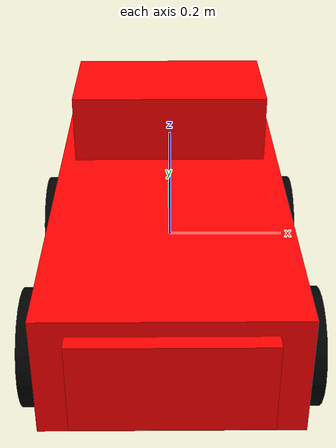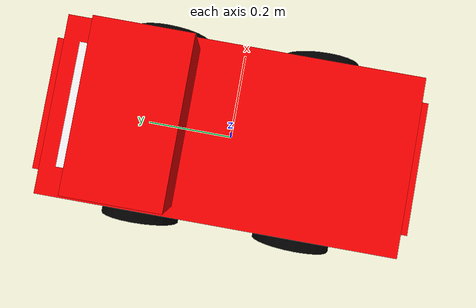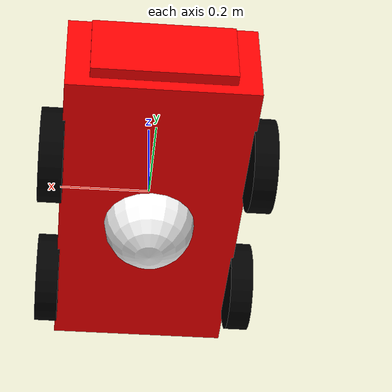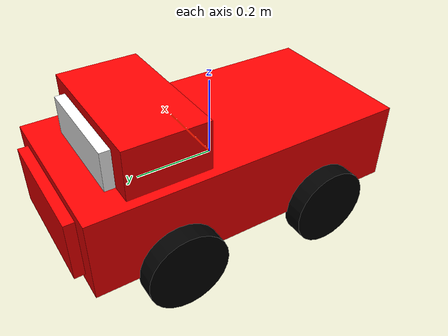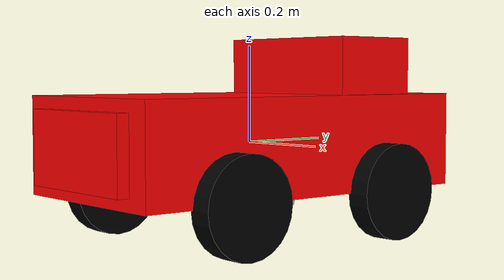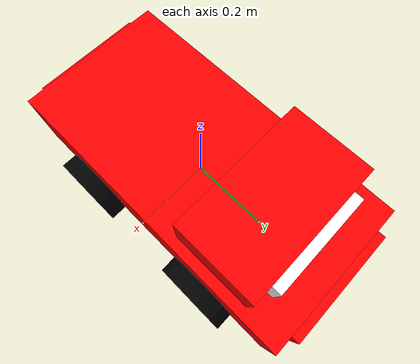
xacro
<?xml version="1.0"?>
<robot name="carro" xmlns:xacro="http://ros.org/wiki/xacro">

  <xacro:include filename="$(find carro)/urdf/carro.gazebo"/>
  <xacro:include filename="$(find carro)/urdf/colors.urdf"/>

  <!-- xacro for constants -->

  <xacro:property name="base_link_size" value="0.4 0.8 0.2"/>

  <xacro:property name="wheel_length" value="0.05"/>
  <xacro:property name="wheel_radius" value="0.1"/>
  <xacro:property name="wheel_weight" value="4"/>

  <xacro:property name="top_size" value="0.35 0.2 0.2"/>
  <xacro:property name="mirror_size" value="0.25 0.05 0.15"/>
  <xacro:property name="front_size" value="0.3 0.05 0.15"/>
  <xacro:property name="back_size" value="0.3 0.05 0.15"/>

  <xacro:property name="sphere_radius" value="0.1"/>

  <xacro:property name="other_links_weight" value="1"/>

  <!-- xacro for geometry -->

  <xacro:macro name="box_g" params="size">
    <geometry>
      <box size="${size}"/>
    </geometry>
  </xacro:macro>

  <xacro:macro name="wheel_g" params="length radius">
    <geometry>
      <cylinder length="${length}" radius="${radius}"/>
    </geometry>
  </xacro:macro>

  <xacro:macro name="sphere_g" params="radius">
    <geometry>
      <sphere radius="${radius}"/>
    </geometry>
  </xacro:macro>

  <!-- xacro for visual -->

  <xacro:macro name="box_visual" params="size color">
    <visual>
      <xacro:box_g size="${size}"/>
      <material name="${color}"/>
    </visual>
  </xacro:macro>

  <!-- xacro for collision -->

  <xacro:macro name="box_collision" params="size">
    <collision>
      <xacro:box_g size="${size}"/>
    </collision>
  </xacro:macro>

  <!-- xacro for inertial -->

  <xacro:macro name="default_inertial" params="mass">
    <inertial>
      <mass value="${mass}"/>
      <inertia ixx="0.1" ixy="0.0" ixz="0.0" iyy="0.1" iyz="0.0" izz="0.1"/>
    </inertial>
  </xacro:macro>

  <!-- xacro for link -->

  <xacro:macro name="wheel_link" params="name">
    <link name="${name}">
      <visual>
        <origin rpy="1.57075 0 1.57075" xyz="0 0 0"/>
        <xacro:wheel_g length="${wheel_length}" radius="${wheel_radius}"/>
        <material name="black"/>
      </visual>
      <collision>
        <origin rpy="1.57075 0 1.57075" xyz="0 0 0"/>
        <xacro:wheel_g length="${wheel_length}" radius="${wheel_radius}"/>
      </collision>
      <xacro:default_inertial mass="${wheel_weight}"/>
    </link>
  </xacro:macro>

  <!-- xacro for joint -->

  <xacro:macro name="box_joint" params="name position">
    <joint name="${name}_joint" type="fixed">
      <parent link="base_link"/>
      <child link="${name}"/>
      <origin rpy="0 0 0" xyz="${position}"/>
    </joint>
  </xacro:macro>

  <xacro:macro name="wheel_joint" params="name position">
    <joint name="${name}_joint" type="continuous">
      <axis rpy="0 0 0" xyz="-1 0 0"/>
      <parent link="base_link"/>
      <child link="${name}"/>
      <origin rpy="0 0 0" xyz="${position}"/>
      <limit effort="10000" velocity="1000"/>
      <joint_properties damping="1.0" friction="1.0"/>
    </joint>
  </xacro:macro>

  <!-- xacro for transmission -->

  <xacro:macro name="default_transmission" params="joint">
    <transmission name="${joint}_transmission">
      <type>transmission_interface/SimpleTransmission</type>
      <joint name="${joint}_joint">
        <hardwareInterface>hardware_interface/EffortJointInterface</hardwareInterface>
      </joint>
      <actuator name="${joint}_actuator">
        <hardwareInterface>hardware_interface/EffortJointInterface</hardwareInterface>
        <mechanicalReduction>1</mechanicalReduction>
      </actuator>
    </transmission>
  </xacro:macro>

  <!-- links -->

  <link name="base_link">
    <xacro:box_visual size="${base_link_size}" color="red"/>
    <xacro:box_collision size="${base_link_size}"/>
    <xacro:default_inertial mass="10"/>
  </link>

  <xacro:wheel_link name="right_front_wheel"/>
  <xacro:wheel_link name="left_front_wheel"/>
  <xacro:wheel_link name="right_back_wheel"/>
  <xacro:wheel_link name="left_back_wheel"/>

  <link name="center_sphere">
    <visual>
      <xacro:sphere_g radius="${sphere_radius}"/>
      <material name="white"/>
    </visual>
    <collision>
      <xacro:sphere_g radius="${sphere_radius}"/>
    </collision>
    <xacro:default_inertial mass="4"/>
  </link>

  <link name="top">
    <xacro:box_visual size="${top_size}" color="red"/>
    <xacro:box_collision size="${top_size}"/>
    <xacro:default_inertial mass="${other_links_weight}"/>
  </link>

  <link name="mirror">
    <xacro:box_visual size="${mirror_size}" color="white"/>
    <xacro:box_collision size="${mirror_size}"/>
    <xacro:default_inertial mass="${other_links_weight}"/>
  </link>

  <link name="front">
    <xacro:box_visual size="${front_size}" color="red"/>
    <xacro:box_collision size="${front_size}"/>
    <xacro:default_inertial mass="${other_links_weight}"/>
  </link>

  <link name="back">
    <xacro:box_visual size="${back_size}" color="red"/>
    <xacro:box_collision size="${back_size}"/>
    <xacro:default_inertial mass="${other_links_weight}"/>
  </link>

  <!-- joints -->

  <xacro:wheel_joint name="right_front_wheel" position="0.22 0.2 -0.1"/>
  <xacro:wheel_joint name="left_front_wheel" position="-0.22 0.2 -0.1"/>
  <xacro:wheel_joint name="right_back_wheel" position="0.22 -0.2 -0.1"/>
  <xacro:wheel_joint name="left_back_wheel" position="-0.22 -0.2 -0.1"/>

  <joint name="center_sphere_joint" type="continuous">
    <axis rpy="0 0 0" xyz="0 0 1"/>
    <parent link="base_link"/>
    <child link="center_sphere"/>
    <origin rpy="0 0 0" xyz="0 0 -0.1"/>
  </joint>

  <xacro:box_joint name="top" position="0 0.2 0.12"/>
  <xacro:box_joint name="mirror" position="0 0.3 0.12"/>
  <xacro:box_joint name="front" position="0 0.4 0"/>
  <xacro:box_joint name="back" position="0 -0.4 0"/>

  <!-- transmissions -->

  <xacro:default_transmission joint="right_front_wheel"/>
  <xacro:default_transmission joint="left_front_wheel"/>
  <xacro:default_transmission joint="right_back_wheel"/>
  <xacro:default_transmission joint="left_back_wheel"/>

</robot>

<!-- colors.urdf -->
<robot>

  <material name="red">
    <color rgba="1 0 0 1"/>
  </material>

  <material name="black">
    <color rgba="0 0 0 1"/>
  </material>

  <material name="white">
    <color rgba="1 1 1 1"/>
  </material>

</robot>
